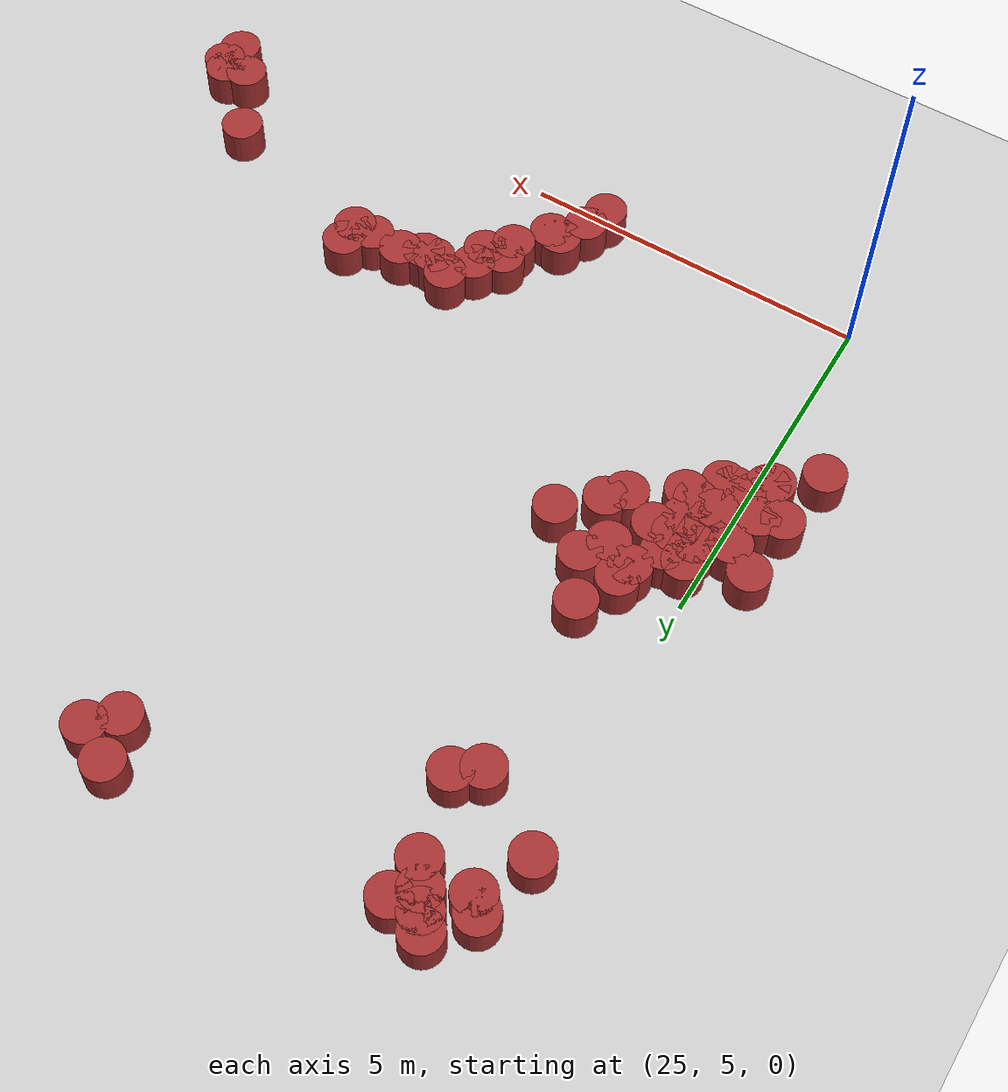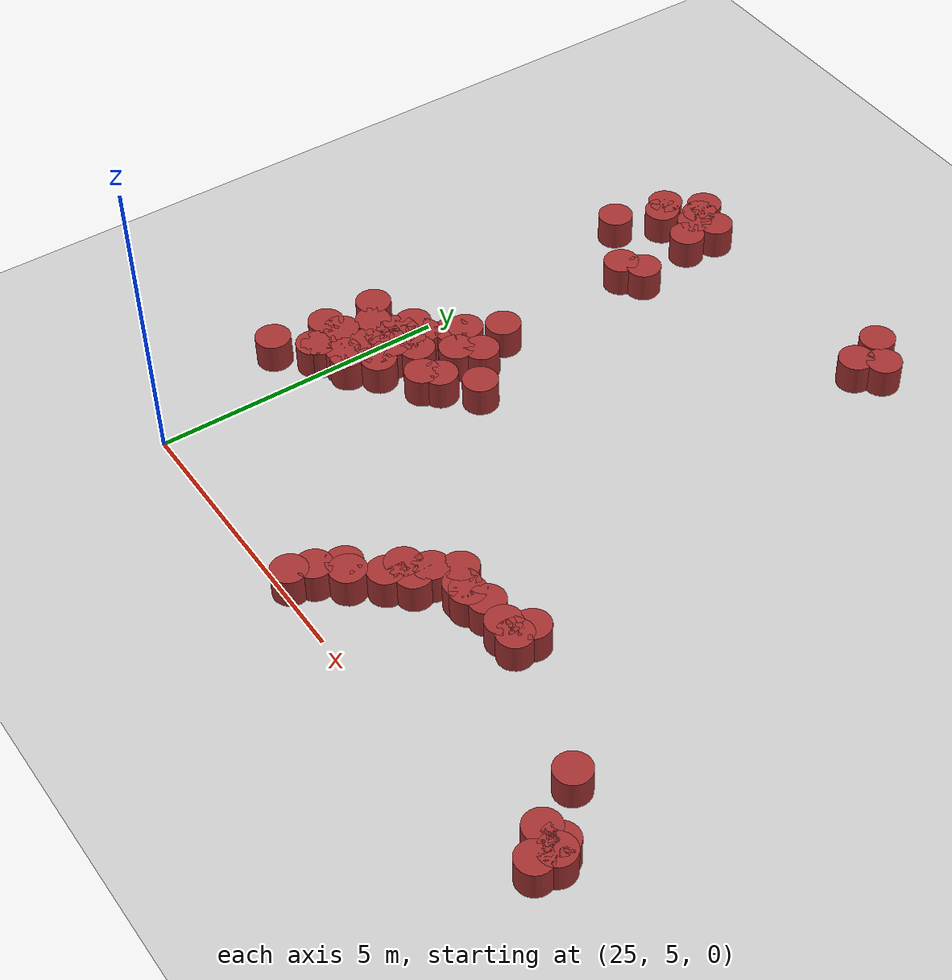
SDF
<sdf version="1.6">
 <world name="default">
  <model name="ground_plane">
   <static>1</static>
   <link name="link">
    <collision name="collision">
     <geometry><plane><normal>0 0 1</normal><size>100 100</size></plane></geometry>
     <surface><friction><ode><mu>100</mu><mu2>50</mu2></ode></friction></surface>
    </collision>
    <visual name="visual">
     <cast_shadows>0</cast_shadows>
     <geometry><plane><normal>0 0 1</normal><size>100 100</size></plane></geometry>
     <material>
      <script><uri>file://media/materials/scripts/gazebo.material</uri><name>Gazebo/Grey</name></script>
     </material>
    </visual>
   </link>
  </model>
  <model name="unit_cylinder_58">
   <static>1</static>
   <pose>26.1581 9.84013 0 0 -0 0</pose>
   <link name="link">
    <inertial>
     <mass>1</mass>
     <inertia><ixx>0.145833</ixx><ixy>0</ixy><ixz>0</ixz><iyy>0.145833</iyy><iyz>0</iyz><izz>0.125</izz></inertia>
    </inertial>
    <collision name="collision">
     <geometry><cylinder><radius>0.3</radius><length>1</length></cylinder></geometry>
    </collision>
    <visual name="visual">
     <geometry><cylinder><radius>0.3</radius><length>1</length></cylinder></geometry>
     <material><ambient>0.648 0.192 0.192 1</ambient><diffuse>0.648 0.192 0.192 1</diffuse></material>
     <material>
      <script><name>Gazebo/Grey</name><uri>file://media/materials/scripts/gazebo.material</uri></script>
     </material>
    </visual>
   </link>
  </model>
  <model name="unit_cylinder_293">
   <static>1</static>
   <pose>24.679 8.51877 0 0 -0 0</pose>
   <link name="link">
    <inertial>
     <mass>1</mass>
     <inertia><ixx>0.145833</ixx><ixy>0</ixy><ixz>0</ixz><iyy>0.145833</iyy><iyz>0</iyz><izz>0.125</izz></inertia>
    </inertial>
    <collision name="collision">
     <geometry><cylinder><radius>0.3</radius><length>1</length></cylinder></geometry>
    </collision>
    <visual name="visual">
     <geometry><cylinder><radius>0.3</radius><length>1</length></cylinder></geometry>
     <material><ambient>0.648 0.192 0.192 1</ambient><diffuse>0.648 0.192 0.192 1</diffuse></material>
     <material>
      <script><name>Gazebo/Grey</name><uri>file://media/materials/scripts/gazebo.material</uri></script>
     </material>
    </visual>
   </link>
  </model>
  <model name="unit_cylinder_294">
   <static>1</static>
   <pose>25.9088 13.3573 0 0 -0 0</pose>
   <link name="link">
    <inertial>
     <mass>1</mass>
     <inertia><ixx>0.145833</ixx><ixy>0</ixy><ixz>0</ixz><iyy>0.145833</iyy><iyz>0</iyz><izz>0.125</izz></inertia>
    </inertial>
    <collision name="collision">
     <geometry><cylinder><radius>0.3</radius><length>1</length></cylinder></geometry>
    </collision>
    <visual name="visual">
     <geometry><cylinder><radius>0.3</radius><length>1</length></cylinder></geometry>
     <material><ambient>0.648 0.192 0.192 1</ambient><diffuse>0.648 0.192 0.192 1</diffuse></material>
     <material>
      <script><name>Gazebo/Grey</name><uri>file://media/materials/scripts/gazebo.material</uri></script>
     </material>
    </visual>
   </link>
  </model>
  <model name="unit_cylinder_301">
   <static>1</static>
   <pose>25.1671 8.26639 0 0 -0 0</pose>
   <link name="link">
    <inertial>
     <mass>1</mass>
     <inertia><ixx>0.145833</ixx><ixy>0</ixy><ixz>0</ixz><iyy>0.145833</iyy><iyz>0</iyz><izz>0.125</izz></inertia>
    </inertial>
    <collision name="collision">
     <geometry><cylinder><radius>0.3</radius><length>1</length></cylinder></geometry>
    </collision>
    <visual name="visual">
     <geometry><cylinder><radius>0.3</radius><length>1</length></cylinder></geometry>
     <material><ambient>0.648 0.192 0.192 1</ambient><diffuse>0.648 0.192 0.192 1</diffuse></material>
     <material>
      <script><name>Gazebo/Grey</name><uri>file://media/materials/scripts/gazebo.material</uri></script>
     </material>
    </visual>
   </link>
  </model>
  <model name="unit_cylinder_302">
   <static>1</static>
   <pose>24.7943 8.01835 0 0 -0 0</pose>
   <link name="link">
    <inertial>
     <mass>1</mass>
     <inertia><ixx>0.145833</ixx><ixy>0</ixy><ixz>0</ixz><iyy>0.145833</iyy><iyz>0</iyz><izz>0.125</izz></inertia>
    </inertial>
    <collision name="collision">
     <geometry><cylinder><radius>0.3</radius><length>1</length></cylinder></geometry>
    </collision>
    <visual name="visual">
     <geometry><cylinder><radius>0.3</radius><length>1</length></cylinder></geometry>
     <material><ambient>0.648 0.192 0.192 1</ambient><diffuse>0.648 0.192 0.192 1</diffuse></material>
     <material>
      <script><name>Gazebo/Grey</name><uri>file://media/materials/scripts/gazebo.material</uri></script>
     </material>
    </visual>
   </link>
  </model>
  <model name="unit_cylinder_303">
   <static>1</static>
   <pose>24.7979 9.06203 0 0 -0 0</pose>
   <link name="link">
    <inertial>
     <mass>1</mass>
     <inertia><ixx>0.145833</ixx><ixy>0</ixy><ixz>0</ixz><iyy>0.145833</iyy><iyz>0</iyz><izz>0.125</izz></inertia>
    </inertial>
    <collision name="collision">
     <geometry><cylinder><radius>0.3</radius><length>1</length></cylinder></geometry>
    </collision>
    <visual name="visual">
     <geometry><cylinder><radius>0.3</radius><length>1</length></cylinder></geometry>
     <material><ambient>0.648 0.192 0.192 1</ambient><diffuse>0.648 0.192 0.192 1</diffuse></material>
     <material>
      <script><name>Gazebo/Grey</name><uri>file://media/materials/scripts/gazebo.material</uri></script>
     </material>
    </visual>
   </link>
  </model>
  <model name="unit_cylinder_306">
   <static>1</static>
   <pose>26.2382 13.5953 0 0 -0 0</pose>
   <link name="link">
    <inertial>
     <mass>1</mass>
     <inertia><ixx>0.145833</ixx><ixy>0</ixy><ixz>0</ixz><iyy>0.145833</iyy><iyz>0</iyz><izz>0.125</izz></inertia>
    </inertial>
    <collision name="collision">
     <geometry><cylinder><radius>0.3</radius><length>1</length></cylinder></geometry>
    </collision>
    <visual name="visual">
     <geometry><cylinder><radius>0.3</radius><length>1</length></cylinder></geometry>
     <material><ambient>0.648 0.192 0.192 1</ambient><diffuse>0.648 0.192 0.192 1</diffuse></material>
     <material>
      <script><name>Gazebo/Grey</name><uri>file://media/materials/scripts/gazebo.material</uri></script>
     </material>
    </visual>
   </link>
  </model>
  <model name="unit_cylinder_313">
   <static>1</static>
   <pose>25.2 8.7 0 0 -0 0</pose>
   <link name="link">
    <inertial>
     <mass>1</mass>
     <inertia><ixx>0.145833</ixx><ixy>0</ixy><ixz>0</ixz><iyy>0.145833</iyy><iyz>0</iyz><izz>0.125</izz></inertia>
    </inertial>
    <collision name="collision">
     <geometry><cylinder><radius>0.3</radius><length>1</length></cylinder></geometry>
    </collision>
    <visual name="visual">
     <geometry><cylinder><radius>0.3</radius><length>1</length></cylinder></geometry>
     <material><ambient>0.648 0.192 0.192 1</ambient><diffuse>0.648 0.192 0.192 1</diffuse></material>
     <material>
      <script><name>Gazebo/Grey</name><uri>file://media/materials/scripts/gazebo.material</uri></script>
     </material>
    </visual>
   </link>
  </model>
  <model name="unit_cylinder_314">
   <static>1</static>
   <pose>25.2 9 0 0 -0 0</pose>
   <link name="link">
    <inertial>
     <mass>1</mass>
     <inertia><ixx>0.145833</ixx><ixy>0</ixy><ixz>0</ixz><iyy>0.145833</iyy><iyz>0</iyz><izz>0.125</izz></inertia>
    </inertial>
    <collision name="collision">
     <geometry><cylinder><radius>0.3</radius><length>1</length></cylinder></geometry>
    </collision>
    <visual name="visual">
     <geometry><cylinder><radius>0.3</radius><length>1</length></cylinder></geometry>
     <material><ambient>0.648 0.192 0.192 1</ambient><diffuse>0.648 0.192 0.192 1</diffuse></material>
     <material>
      <script><name>Gazebo/Grey</name><uri>file://media/materials/scripts/gazebo.material</uri></script>
     </material>
    </visual>
   </link>
  </model>
  <model name="unit_cylinder_315">
   <static>1</static>
   <pose>25.2 9.3 0 0 -0 0</pose>
   <link name="link">
    <inertial>
     <mass>1</mass>
     <inertia><ixx>0.145833</ixx><ixy>0</ixy><ixz>0</ixz><iyy>0.145833</iyy><iyz>0</iyz><izz>0.125</izz></inertia>
    </inertial>
    <collision name="collision">
     <geometry><cylinder><radius>0.3</radius><length>1</length></cylinder></geometry>
    </collision>
    <visual name="visual">
     <geometry><cylinder><radius>0.3</radius><length>1</length></cylinder></geometry>
     <material><ambient>0.648 0.192 0.192 1</ambient><diffuse>0.648 0.192 0.192 1</diffuse></material>
     <material>
      <script><name>Gazebo/Grey</name><uri>file://media/materials/scripts/gazebo.material</uri></script>
     </material>
    </visual>
   </link>
  </model>
  <model name="unit_cylinder_316">
   <static>1</static>
   <pose>25.2 9.6 0 0 -0 0</pose>
   <link name="link">
    <inertial>
     <mass>1</mass>
     <inertia><ixx>0.145833</ixx><ixy>0</ixy><ixz>0</ixz><iyy>0.145833</iyy><iyz>0</iyz><izz>0.125</izz></inertia>
    </inertial>
    <collision name="collision">
     <geometry><cylinder><radius>0.3</radius><length>1</length></cylinder></geometry>
    </collision>
    <visual name="visual">
     <geometry><cylinder><radius>0.3</radius><length>1</length></cylinder></geometry>
     <material><ambient>0.648 0.192 0.192 1</ambient><diffuse>0.648 0.192 0.192 1</diffuse></material>
     <material>
      <script><name>Gazebo/Grey</name><uri>file://media/materials/scripts/gazebo.material</uri></script>
     </material>
    </visual>
   </link>
  </model>
  <model name="unit_cylinder_319">
   <static>1</static>
   <pose>24.3799 8.39844 0 0 -0 0</pose>
   <link name="link">
    <inertial>
     <mass>1</mass>
     <inertia><ixx>0.145833</ixx><ixy>0</ixy><ixz>0</ixz><iyy>0.145833</iyy><iyz>0</iyz><izz>0.125</izz></inertia>
    </inertial>
    <collision name="collision">
     <geometry><cylinder><radius>0.3</radius><length>1</length></cylinder></geometry>
    </collision>
    <visual name="visual">
     <geometry><cylinder><radius>0.3</radius><length>1</length></cylinder></geometry>
     <material><ambient>0.648 0.192 0.192 1</ambient><diffuse>0.648 0.192 0.192 1</diffuse></material>
     <material>
      <script><name>Gazebo/Grey</name><uri>file://media/materials/scripts/gazebo.material</uri></script>
     </material>
    </visual>
   </link>
  </model>
  <model name="unit_cylinder_324">
   <static>1</static>
   <pose>25.5 8.7 0 0 -0 0</pose>
   <link name="link">
    <inertial>
     <mass>1</mass>
     <inertia><ixx>0.145833</ixx><ixy>0</ixy><ixz>0</ixz><iyy>0.145833</iyy><iyz>0</iyz><izz>0.125</izz></inertia>
    </inertial>
    <collision name="collision">
     <geometry><cylinder><radius>0.3</radius><length>1</length></cylinder></geometry>
    </collision>
    <visual name="visual">
     <geometry><cylinder><radius>0.3</radius><length>1</length></cylinder></geometry>
     <material><ambient>0.648 0.192 0.192 1</ambient><diffuse>0.648 0.192 0.192 1</diffuse></material>
     <material>
      <script><name>Gazebo/Grey</name><uri>file://media/materials/scripts/gazebo.material</uri></script>
     </material>
    </visual>
   </link>
  </model>
  <model name="unit_cylinder_325">
   <static>1</static>
   <pose>25.5 9 0 0 -0 0</pose>
   <link name="link">
    <inertial>
     <mass>1</mass>
     <inertia><ixx>0.145833</ixx><ixy>0</ixy><ixz>0</ixz><iyy>0.145833</iyy><iyz>0</iyz><izz>0.125</izz></inertia>
    </inertial>
    <collision name="collision">
     <geometry><cylinder><radius>0.3</radius><length>1</length></cylinder></geometry>
    </collision>
    <visual name="visual">
     <geometry><cylinder><radius>0.3</radius><length>1</length></cylinder></geometry>
     <material><ambient>0.648 0.192 0.192 1</ambient><diffuse>0.648 0.192 0.192 1</diffuse></material>
     <material>
      <script><name>Gazebo/Grey</name><uri>file://media/materials/scripts/gazebo.material</uri></script>
     </material>
    </visual>
   </link>
  </model>
  <model name="unit_cylinder_326">
   <static>1</static>
   <pose>25.5 9.3 0 0 -0 0</pose>
   <link name="link">
    <inertial>
     <mass>1</mass>
     <inertia><ixx>0.145833</ixx><ixy>0</ixy><ixz>0</ixz><iyy>0.145833</iyy><iyz>0</iyz><izz>0.125</izz></inertia>
    </inertial>
    <collision name="collision">
     <geometry><cylinder><radius>0.3</radius><length>1</length></cylinder></geometry>
    </collision>
    <visual name="visual">
     <geometry><cylinder><radius>0.3</radius><length>1</length></cylinder></geometry>
     <material><ambient>0.648 0.192 0.192 1</ambient><diffuse>0.648 0.192 0.192 1</diffuse></material>
     <material>
      <script><name>Gazebo/Grey</name><uri>file://media/materials/scripts/gazebo.material</uri></script>
     </material>
    </visual>
   </link>
  </model>
  <model name="unit_cylinder_327">
   <static>1</static>
   <pose>25.5 9.6 0 0 -0 0</pose>
   <link name="link">
    <inertial>
     <mass>1</mass>
     <inertia><ixx>0.145833</ixx><ixy>0</ixy><ixz>0</ixz><iyy>0.145833</iyy><iyz>0</iyz><izz>0.125</izz></inertia>
    </inertial>
    <collision name="collision">
     <geometry><cylinder><radius>0.3</radius><length>1</length></cylinder></geometry>
    </collision>
    <visual name="visual">
     <geometry><cylinder><radius>0.3</radius><length>1</length></cylinder></geometry>
     <material><ambient>0.648 0.192 0.192 1</ambient><diffuse>0.648 0.192 0.192 1</diffuse></material>
     <material>
      <script><name>Gazebo/Grey</name><uri>file://media/materials/scripts/gazebo.material</uri></script>
     </material>
    </visual>
   </link>
  </model>
  <model name="unit_cylinder_328">
   <static>1</static>
   <pose>24.2284 7.47729 0 0 -0 0</pose>
   <link name="link">
    <inertial>
     <mass>1</mass>
     <inertia><ixx>0.145833</ixx><ixy>0</ixy><ixz>0</ixz><iyy>0.145833</iyy><iyz>0</iyz><izz>0.125</izz></inertia>
    </inertial>
    <collision name="collision">
     <geometry><cylinder><radius>0.3</radius><length>1</length></cylinder></geometry>
    </collision>
    <visual name="visual">
     <geometry><cylinder><radius>0.3</radius><length>1</length></cylinder></geometry>
     <material><ambient>0.648 0.192 0.192 1</ambient><diffuse>0.648 0.192 0.192 1</diffuse></material>
     <material>
      <script><name>Gazebo/Grey</name><uri>file://media/materials/scripts/gazebo.material</uri></script>
     </material>
    </visual>
   </link>
  </model>
  <model name="unit_cylinder_330">
   <static>1</static>
   <pose>25.314 8.25682 0 0 -0 0</pose>
   <link name="link">
    <inertial>
     <mass>1</mass>
     <inertia><ixx>0.145833</ixx><ixy>0</ixy><ixz>0</ixz><iyy>0.145833</iyy><iyz>0</iyz><izz>0.125</izz></inertia>
    </inertial>
    <collision name="collision">
     <geometry><cylinder><radius>0.3</radius><length>1</length></cylinder></geometry>
    </collision>
    <visual name="visual">
     <geometry><cylinder><radius>0.3</radius><length>1</length></cylinder></geometry>
     <material><ambient>0.648 0.192 0.192 1</ambient><diffuse>0.648 0.192 0.192 1</diffuse></material>
     <material>
      <script><name>Gazebo/Grey</name><uri>file://media/materials/scripts/gazebo.material</uri></script>
     </material>
    </visual>
   </link>
  </model>
  <model name="unit_cylinder_333">
   <static>1</static>
   <pose>25.8 9.3 0 0 -0 0</pose>
   <link name="link">
    <inertial>
     <mass>1</mass>
     <inertia><ixx>0.145833</ixx><ixy>0</ixy><ixz>0</ixz><iyy>0.145833</iyy><iyz>0</iyz><izz>0.125</izz></inertia>
    </inertial>
    <collision name="collision">
     <geometry><cylinder><radius>0.3</radius><length>1</length></cylinder></geometry>
    </collision>
    <visual name="visual">
     <geometry><cylinder><radius>0.3</radius><length>1</length></cylinder></geometry>
     <material><ambient>0.648 0.192 0.192 1</ambient><diffuse>0.648 0.192 0.192 1</diffuse></material>
     <material>
      <script><name>Gazebo/Grey</name><uri>file://media/materials/scripts/gazebo.material</uri></script>
     </material>
    </visual>
   </link>
  </model>
  <model name="unit_cylinder_334">
   <static>1</static>
   <pose>27.0314 9.73158 0 0 -0 0</pose>
   <link name="link">
    <inertial>
     <mass>1</mass>
     <inertia><ixx>0.145833</ixx><ixy>0</ixy><ixz>0</ixz><iyy>0.145833</iyy><iyz>0</iyz><izz>0.125</izz></inertia>
    </inertial>
    <collision name="collision">
     <geometry><cylinder><radius>0.3</radius><length>1</length></cylinder></geometry>
    </collision>
    <visual name="visual">
     <geometry><cylinder><radius>0.3</radius><length>1</length></cylinder></geometry>
     <material><ambient>0.648 0.192 0.192 1</ambient><diffuse>0.648 0.192 0.192 1</diffuse></material>
     <material>
      <script><name>Gazebo/Grey</name><uri>file://media/materials/scripts/gazebo.material</uri></script>
     </material>
    </visual>
   </link>
  </model>
  <model name="unit_cylinder_335">
   <static>1</static>
   <pose>24.7397 7.9541 0 0 -0 0</pose>
   <link name="link">
    <inertial>
     <mass>1</mass>
     <inertia><ixx>0.145833</ixx><ixy>0</ixy><ixz>0</ixz><iyy>0.145833</iyy><iyz>0</iyz><izz>0.125</izz></inertia>
    </inertial>
    <collision name="collision">
     <geometry><cylinder><radius>0.3</radius><length>1</length></cylinder></geometry>
    </collision>
    <visual name="visual">
     <geometry><cylinder><radius>0.3</radius><length>1</length></cylinder></geometry>
     <material><ambient>0.648 0.192 0.192 1</ambient><diffuse>0.648 0.192 0.192 1</diffuse></material>
     <material>
      <script><name>Gazebo/Grey</name><uri>file://media/materials/scripts/gazebo.material</uri></script>
     </material>
    </visual>
   </link>
  </model>
  <model name="unit_cylinder_338">
   <static>1</static>
   <pose>29.8973 15.6858 0 0 -0 0</pose>
   <link name="link">
    <inertial>
     <mass>1</mass>
     <inertia><ixx>0.145833</ixx><ixy>0</ixy><ixz>0</ixz><iyy>0.145833</iyy><iyz>0</iyz><izz>0.125</izz></inertia>
    </inertial>
    <collision name="collision">
     <geometry><cylinder><radius>0.3</radius><length>1</length></cylinder></geometry>
    </collision>
    <visual name="visual">
     <geometry><cylinder><radius>0.3</radius><length>1</length></cylinder></geometry>
     <material><ambient>0.648 0.192 0.192 1</ambient><diffuse>0.648 0.192 0.192 1</diffuse></material>
     <material>
      <script><name>Gazebo/Grey</name><uri>file://media/materials/scripts/gazebo.material</uri></script>
     </material>
    </visual>
   </link>
  </model>
  <model name="unit_cylinder_339">
   <static>1</static>
   <pose>26.1 10.8 0 0 -0 0</pose>
   <link name="link">
    <inertial>
     <mass>1</mass>
     <inertia><ixx>0.145833</ixx><ixy>0</ixy><ixz>0</ixz><iyy>0.145833</iyy><iyz>0</iyz><izz>0.125</izz></inertia>
    </inertial>
    <collision name="collision">
     <geometry><cylinder><radius>0.3</radius><length>1</length></cylinder></geometry>
    </collision>
    <visual name="visual">
     <geometry><cylinder><radius>0.3</radius><length>1</length></cylinder></geometry>
     <material><ambient>0.648 0.192 0.192 1</ambient><diffuse>0.648 0.192 0.192 1</diffuse></material>
     <material>
      <script><name>Gazebo/Grey</name><uri>file://media/materials/scripts/gazebo.material</uri></script>
     </material>
    </visual>
   </link>
  </model>
  <model name="unit_cylinder_340">
   <static>1</static>
   <pose>25.8152 10.234 0 0 -0 0</pose>
   <link name="link">
    <inertial>
     <mass>1</mass>
     <inertia><ixx>0.145833</ixx><ixy>0</ixy><ixz>0</ixz><iyy>0.145833</iyy><iyz>0</iyz><izz>0.125</izz></inertia>
    </inertial>
    <collision name="collision">
     <geometry><cylinder><radius>0.3</radius><length>1</length></cylinder></geometry>
    </collision>
    <visual name="visual">
     <geometry><cylinder><radius>0.3</radius><length>1</length></cylinder></geometry>
     <material><ambient>0.648 0.192 0.192 1</ambient><diffuse>0.648 0.192 0.192 1</diffuse></material>
     <material>
      <script><name>Gazebo/Grey</name><uri>file://media/materials/scripts/gazebo.material</uri></script>
     </material>
    </visual>
   </link>
  </model>
  <model name="unit_cylinder_343">
   <static>1</static>
   <pose>30.0771 15.0841 0 0 -0 0</pose>
   <link name="link">
    <inertial>
     <mass>1</mass>
     <inertia><ixx>0.145833</ixx><ixy>0</ixy><ixz>0</ixz><iyy>0.145833</iyy><iyz>0</iyz><izz>0.125</izz></inertia>
    </inertial>
    <collision name="collision">
     <geometry><cylinder><radius>0.3</radius><length>1</length></cylinder></geometry>
    </collision>
    <visual name="visual">
     <geometry><cylinder><radius>0.3</radius><length>1</length></cylinder></geometry>
     <material><ambient>0.648 0.192 0.192 1</ambient><diffuse>0.648 0.192 0.192 1</diffuse></material>
     <material>
      <script><name>Gazebo/Grey</name><uri>file://media/materials/scripts/gazebo.material</uri></script>
     </material>
    </visual>
   </link>
  </model>
  <model name="unit_cylinder_348">
   <static>1</static>
   <pose>25.7549 10.0047 0 0 -0 0</pose>
   <link name="link">
    <inertial>
     <mass>1</mass>
     <inertia><ixx>0.145833</ixx><ixy>0</ixy><ixz>0</ixz><iyy>0.145833</iyy><iyz>0</iyz><izz>0.125</izz></inertia>
    </inertial>
    <collision name="collision">
     <geometry><cylinder><radius>0.3</radius><length>1</length></cylinder></geometry>
    </collision>
    <visual name="visual">
     <geometry><cylinder><radius>0.3</radius><length>1</length></cylinder></geometry>
     <material><ambient>0.648 0.192 0.192 1</ambient><diffuse>0.648 0.192 0.192 1</diffuse></material>
     <material>
      <script><name>Gazebo/Grey</name><uri>file://media/materials/scripts/gazebo.material</uri></script>
     </material>
    </visual>
   </link>
  </model>
  <model name="unit_cylinder_349">
   <static>1</static>
   <pose>26.4058 10.1662 0 0 -0 0</pose>
   <link name="link">
    <inertial>
     <mass>1</mass>
     <inertia><ixx>0.145833</ixx><ixy>0</ixy><ixz>0</ixz><iyy>0.145833</iyy><iyz>0</iyz><izz>0.125</izz></inertia>
    </inertial>
    <collision name="collision">
     <geometry><cylinder><radius>0.3</radius><length>1</length></cylinder></geometry>
    </collision>
    <visual name="visual">
     <geometry><cylinder><radius>0.3</radius><length>1</length></cylinder></geometry>
     <material><ambient>0.648 0.192 0.192 1</ambient><diffuse>0.648 0.192 0.192 1</diffuse></material>
     <material>
      <script><name>Gazebo/Grey</name><uri>file://media/materials/scripts/gazebo.material</uri></script>
     </material>
    </visual>
   </link>
  </model>
  <model name="unit_cylinder_354">
   <static>1</static>
   <pose>25.7505 15.0516 0 0 -0 0</pose>
   <link name="link">
    <inertial>
     <mass>1</mass>
     <inertia><ixx>0.145833</ixx><ixy>0</ixy><ixz>0</ixz><iyy>0.145833</iyy><iyz>0</iyz><izz>0.125</izz></inertia>
    </inertial>
    <collision name="collision">
     <geometry><cylinder><radius>0.3</radius><length>1</length></cylinder></geometry>
    </collision>
    <visual name="visual">
     <geometry><cylinder><radius>0.3</radius><length>1</length></cylinder></geometry>
     <material><ambient>0.648 0.192 0.192 1</ambient><diffuse>0.648 0.192 0.192 1</diffuse></material>
     <material>
      <script><name>Gazebo/Grey</name><uri>file://media/materials/scripts/gazebo.material</uri></script>
     </material>
    </visual>
   </link>
  </model>
  <model name="unit_cylinder_355">
   <static>1</static>
   <pose>25.6052 15.2789 0 0 -0 0</pose>
   <link name="link">
    <inertial>
     <mass>1</mass>
     <inertia><ixx>0.145833</ixx><ixy>0</ixy><ixz>0</ixz><iyy>0.145833</iyy><iyz>0</iyz><izz>0.125</izz></inertia>
    </inertial>
    <collision name="collision">
     <geometry><cylinder><radius>0.3</radius><length>1</length></cylinder></geometry>
    </collision>
    <visual name="visual">
     <geometry><cylinder><radius>0.3</radius><length>1</length></cylinder></geometry>
     <material><ambient>0.648 0.192 0.192 1</ambient><diffuse>0.648 0.192 0.192 1</diffuse></material>
     <material>
      <script><name>Gazebo/Grey</name><uri>file://media/materials/scripts/gazebo.material</uri></script>
     </material>
    </visual>
   </link>
  </model>
  <model name="unit_cylinder_359">
   <static>1</static>
   <pose>25.4731 15.4797 0 0 -0 0</pose>
   <link name="link">
    <inertial>
     <mass>1</mass>
     <inertia><ixx>0.145833</ixx><ixy>0</ixy><ixz>0</ixz><iyy>0.145833</iyy><iyz>0</iyz><izz>0.125</izz></inertia>
    </inertial>
    <collision name="collision">
     <geometry><cylinder><radius>0.3</radius><length>1</length></cylinder></geometry>
    </collision>
    <visual name="visual">
     <geometry><cylinder><radius>0.3</radius><length>1</length></cylinder></geometry>
     <material><ambient>0.648 0.192 0.192 1</ambient><diffuse>0.648 0.192 0.192 1</diffuse></material>
     <material>
      <script><name>Gazebo/Grey</name><uri>file://media/materials/scripts/gazebo.material</uri></script>
     </material>
    </visual>
   </link>
  </model>
  <model name="unit_cylinder_360">
   <static>1</static>
   <pose>25.1883 14.7694 0 0 -0 0</pose>
   <link name="link">
    <inertial>
     <mass>1</mass>
     <inertia><ixx>0.145833</ixx><ixy>0</ixy><ixz>0</ixz><iyy>0.145833</iyy><iyz>0</iyz><izz>0.125</izz></inertia>
    </inertial>
    <collision name="collision">
     <geometry><cylinder><radius>0.3</radius><length>1</length></cylinder></geometry>
    </collision>
    <visual name="visual">
     <geometry><cylinder><radius>0.3</radius><length>1</length></cylinder></geometry>
     <material><ambient>0.648 0.192 0.192 1</ambient><diffuse>0.648 0.192 0.192 1</diffuse></material>
     <material>
      <script><name>Gazebo/Grey</name><uri>file://media/materials/scripts/gazebo.material</uri></script>
     </material>
    </visual>
   </link>
  </model>
  <model name="unit_cylinder_362">
   <static>1</static>
   <pose>26.5306 9.28115 0 0 -0 0</pose>
   <link name="link">
    <inertial>
     <mass>1</mass>
     <inertia><ixx>0.145833</ixx><ixy>0</ixy><ixz>0</ixz><iyy>0.145833</iyy><iyz>0</iyz><izz>0.125</izz></inertia>
    </inertial>
    <collision name="collision">
     <geometry><cylinder><radius>0.3</radius><length>1</length></cylinder></geometry>
    </collision>
    <visual name="visual">
     <geometry><cylinder><radius>0.3</radius><length>1</length></cylinder></geometry>
     <material><ambient>0.648 0.192 0.192 1</ambient><diffuse>0.648 0.192 0.192 1</diffuse></material>
     <material>
      <script><name>Gazebo/Grey</name><uri>file://media/materials/scripts/gazebo.material</uri></script>
     </material>
    </visual>
   </link>
  </model>
  <model name="unit_cylinder_363">
   <static>1</static>
   <pose>25.6724 8.64059 0 0 -0 0</pose>
   <link name="link">
    <inertial>
     <mass>1</mass>
     <inertia><ixx>0.145833</ixx><ixy>0</ixy><ixz>0</ixz><iyy>0.145833</iyy><iyz>0</iyz><izz>0.125</izz></inertia>
    </inertial>
    <collision name="collision">
     <geometry><cylinder><radius>0.3</radius><length>1</length></cylinder></geometry>
    </collision>
    <visual name="visual">
     <geometry><cylinder><radius>0.3</radius><length>1</length></cylinder></geometry>
     <material><ambient>0.648 0.192 0.192 1</ambient><diffuse>0.648 0.192 0.192 1</diffuse></material>
     <material>
      <script><name>Gazebo/Grey</name><uri>file://media/materials/scripts/gazebo.material</uri></script>
     </material>
    </visual>
   </link>
  </model>
  <model name="unit_cylinder_364">
   <static>1</static>
   <pose>26.3288 9.06127 0 0 -0 0</pose>
   <link name="link">
    <inertial>
     <mass>1</mass>
     <inertia><ixx>0.145833</ixx><ixy>0</ixy><ixz>0</ixz><iyy>0.145833</iyy><iyz>0</iyz><izz>0.125</izz></inertia>
    </inertial>
    <collision name="collision">
     <geometry><cylinder><radius>0.3</radius><length>1</length></cylinder></geometry>
    </collision>
    <visual name="visual">
     <geometry><cylinder><radius>0.3</radius><length>1</length></cylinder></geometry>
     <material><ambient>0.648 0.192 0.192 1</ambient><diffuse>0.648 0.192 0.192 1</diffuse></material>
     <material>
      <script><name>Gazebo/Grey</name><uri>file://media/materials/scripts/gazebo.material</uri></script>
     </material>
    </visual>
   </link>
  </model>
  <model name="unit_cylinder_365">
   <static>1</static>
   <pose>26.0225 15.31 0 0 -0 0</pose>
   <link name="link">
    <inertial>
     <mass>1</mass>
     <inertia><ixx>0.145833</ixx><ixy>0</ixy><ixz>0</ixz><iyy>0.145833</iyy><iyz>0</iyz><izz>0.125</izz></inertia>
    </inertial>
    <collision name="collision">
     <geometry><cylinder><radius>0.3</radius><length>1</length></cylinder></geometry>
    </collision>
    <visual name="visual">
     <geometry><cylinder><radius>0.3</radius><length>1</length></cylinder></geometry>
     <material><ambient>0.648 0.192 0.192 1</ambient><diffuse>0.648 0.192 0.192 1</diffuse></material>
     <material>
      <script><name>Gazebo/Grey</name><uri>file://media/materials/scripts/gazebo.material</uri></script>
     </material>
    </visual>
   </link>
  </model>
  <model name="unit_cylinder_368">
   <static>1</static>
   <pose>25.966 14.7307 0 0 -0 0</pose>
   <link name="link">
    <inertial>
     <mass>1</mass>
     <inertia><ixx>0.145833</ixx><ixy>0</ixy><ixz>0</ixz><iyy>0.145833</iyy><iyz>0</iyz><izz>0.125</izz></inertia>
    </inertial>
    <collision name="collision">
     <geometry><cylinder><radius>0.3</radius><length>1</length></cylinder></geometry>
    </collision>
    <visual name="visual">
     <geometry><cylinder><radius>0.3</radius><length>1</length></cylinder></geometry>
     <material><ambient>0.648 0.192 0.192 1</ambient><diffuse>0.648 0.192 0.192 1</diffuse></material>
     <material>
      <script><name>Gazebo/Grey</name><uri>file://media/materials/scripts/gazebo.material</uri></script>
     </material>
    </visual>
   </link>
  </model>
  <model name="unit_cylinder_369">
   <static>1</static>
   <pose>25.0322 14.9533 0 0 -0 0</pose>
   <link name="link">
    <inertial>
     <mass>1</mass>
     <inertia><ixx>0.145833</ixx><ixy>0</ixy><ixz>0</ixz><iyy>0.145833</iyy><iyz>0</iyz><izz>0.125</izz></inertia>
    </inertial>
    <collision name="collision">
     <geometry><cylinder><radius>0.3</radius><length>1</length></cylinder></geometry>
    </collision>
    <visual name="visual">
     <geometry><cylinder><radius>0.3</radius><length>1</length></cylinder></geometry>
     <material><ambient>0.648 0.192 0.192 1</ambient><diffuse>0.648 0.192 0.192 1</diffuse></material>
     <material>
      <script><name>Gazebo/Grey</name><uri>file://media/materials/scripts/gazebo.material</uri></script>
     </material>
    </visual>
   </link>
  </model>
  <model name="unit_cylinder_372">
   <static>1</static>
   <pose>24.8366 14.0143 0 0 -0 0</pose>
   <link name="link">
    <inertial>
     <mass>1</mass>
     <inertia><ixx>0.145833</ixx><ixy>0</ixy><ixz>0</ixz><iyy>0.145833</iyy><iyz>0</iyz><izz>0.125</izz></inertia>
    </inertial>
    <collision name="collision">
     <geometry><cylinder><radius>0.3</radius><length>1</length></cylinder></geometry>
    </collision>
    <visual name="visual">
     <geometry><cylinder><radius>0.3</radius><length>1</length></cylinder></geometry>
     <material><ambient>0.648 0.192 0.192 1</ambient><diffuse>0.648 0.192 0.192 1</diffuse></material>
     <material>
      <script><name>Gazebo/Grey</name><uri>file://media/materials/scripts/gazebo.material</uri></script>
     </material>
    </visual>
   </link>
  </model>
  <model name="unit_cylinder_376">
   <static>1</static>
   <pose>28.99 5.48056 0 0 -0 0</pose>
   <link name="link">
    <inertial>
     <mass>1</mass>
     <inertia><ixx>0.145833</ixx><ixy>0</ixy><ixz>0</ixz><iyy>0.145833</iyy><iyz>0</iyz><izz>0.125</izz></inertia>
    </inertial>
    <collision name="collision">
     <geometry><cylinder><radius>0.3</radius><length>1</length></cylinder></geometry>
    </collision>
    <visual name="visual">
     <geometry><cylinder><radius>0.3</radius><length>1</length></cylinder></geometry>
     <material><ambient>0.648 0.192 0.192 1</ambient><diffuse>0.648 0.192 0.192 1</diffuse></material>
     <material>
      <script><name>Gazebo/Grey</name><uri>file://media/materials/scripts/gazebo.material</uri></script>
     </material>
    </visual>
   </link>
  </model>
  <model name="unit_cylinder_377">
   <static>1</static>
   <pose>28.8633 5.12715 0 0 -0 0</pose>
   <link name="link">
    <inertial>
     <mass>1</mass>
     <inertia><ixx>0.145833</ixx><ixy>0</ixy><ixz>0</ixz><iyy>0.145833</iyy><iyz>0</iyz><izz>0.125</izz></inertia>
    </inertial>
    <collision name="collision">
     <geometry><cylinder><radius>0.3</radius><length>1</length></cylinder></geometry>
    </collision>
    <visual name="visual">
     <geometry><cylinder><radius>0.3</radius><length>1</length></cylinder></geometry>
     <material><ambient>0.648 0.192 0.192 1</ambient><diffuse>0.648 0.192 0.192 1</diffuse></material>
     <material>
      <script><name>Gazebo/Grey</name><uri>file://media/materials/scripts/gazebo.material</uri></script>
     </material>
    </visual>
   </link>
  </model>
  <model name="unit_cylinder_378">
   <static>1</static>
   <pose>29.1852 5.88621 0 0 -0 0</pose>
   <link name="link">
    <inertial>
     <mass>1</mass>
     <inertia><ixx>0.145833</ixx><ixy>0</ixy><ixz>0</ixz><iyy>0.145833</iyy><iyz>0</iyz><izz>0.125</izz></inertia>
    </inertial>
    <collision name="collision">
     <geometry><cylinder><radius>0.3</radius><length>1</length></cylinder></geometry>
    </collision>
    <visual name="visual">
     <geometry><cylinder><radius>0.3</radius><length>1</length></cylinder></geometry>
     <material><ambient>0.648 0.192 0.192 1</ambient><diffuse>0.648 0.192 0.192 1</diffuse></material>
     <material>
      <script><name>Gazebo/Grey</name><uri>file://media/materials/scripts/gazebo.material</uri></script>
     </material>
    </visual>
   </link>
  </model>
  <model name="unit_cylinder_383">
   <static>1</static>
   <pose>29.3533 5.8474 0 0 -0 0</pose>
   <link name="link">
    <inertial>
     <mass>1</mass>
     <inertia><ixx>0.145833</ixx><ixy>0</ixy><ixz>0</ixz><iyy>0.145833</iyy><iyz>0</iyz><izz>0.125</izz></inertia>
    </inertial>
    <collision name="collision">
     <geometry><cylinder><radius>0.3</radius><length>1</length></cylinder></geometry>
    </collision>
    <visual name="visual">
     <geometry><cylinder><radius>0.3</radius><length>1</length></cylinder></geometry>
     <material><ambient>0.648 0.192 0.192 1</ambient><diffuse>0.648 0.192 0.192 1</diffuse></material>
     <material>
      <script><name>Gazebo/Grey</name><uri>file://media/materials/scripts/gazebo.material</uri></script>
     </material>
    </visual>
   </link>
  </model>
  <model name="unit_cylinder_390">
   <static>1</static>
   <pose>30.3934 15.4071 0 0 -0 0</pose>
   <link name="link">
    <inertial>
     <mass>1</mass>
     <inertia><ixx>0.145833</ixx><ixy>0</ixy><ixz>0</ixz><iyy>0.145833</iyy><iyz>0</iyz><izz>0.125</izz></inertia>
    </inertial>
    <collision name="collision">
     <geometry><cylinder><radius>0.3</radius><length>1</length></cylinder></geometry>
    </collision>
    <visual name="visual">
     <geometry><cylinder><radius>0.3</radius><length>1</length></cylinder></geometry>
     <material><ambient>0.648 0.192 0.192 1</ambient><diffuse>0.648 0.192 0.192 1</diffuse></material>
     <material>
      <script><name>Gazebo/Grey</name><uri>file://media/materials/scripts/gazebo.material</uri></script>
     </material>
    </visual>
   </link>
  </model>
  <model name="unit_cylinder_391">
   <static>1</static>
   <pose>29.7 6.3 0 0 -0 0</pose>
   <link name="link">
    <inertial>
     <mass>1</mass>
     <inertia><ixx>0.145833</ixx><ixy>0</ixy><ixz>0</ixz><iyy>0.145833</iyy><iyz>0</iyz><izz>0.125</izz></inertia>
    </inertial>
    <collision name="collision">
     <geometry><cylinder><radius>0.3</radius><length>1</length></cylinder></geometry>
    </collision>
    <visual name="visual">
     <geometry><cylinder><radius>0.3</radius><length>1</length></cylinder></geometry>
     <material><ambient>0.648 0.192 0.192 1</ambient><diffuse>0.648 0.192 0.192 1</diffuse></material>
     <material>
      <script><name>Gazebo/Grey</name><uri>file://media/materials/scripts/gazebo.material</uri></script>
     </material>
    </visual>
   </link>
  </model>
  <model name="unit_cylinder_392">
   <static>1</static>
   <pose>29.7 6.6 0 0 -0 0</pose>
   <link name="link">
    <inertial>
     <mass>1</mass>
     <inertia><ixx>0.145833</ixx><ixy>0</ixy><ixz>0</ixz><iyy>0.145833</iyy><iyz>0</iyz><izz>0.125</izz></inertia>
    </inertial>
    <collision name="collision">
     <geometry><cylinder><radius>0.3</radius><length>1</length></cylinder></geometry>
    </collision>
    <visual name="visual">
     <geometry><cylinder><radius>0.3</radius><length>1</length></cylinder></geometry>
     <material><ambient>0.648 0.192 0.192 1</ambient><diffuse>0.648 0.192 0.192 1</diffuse></material>
     <material>
      <script><name>Gazebo/Grey</name><uri>file://media/materials/scripts/gazebo.material</uri></script>
     </material>
    </visual>
   </link>
  </model>
  <model name="unit_cylinder_395">
   <static>1</static>
   <pose>30 6.6 0 0 -0 0</pose>
   <link name="link">
    <inertial>
     <mass>1</mass>
     <inertia><ixx>0.145833</ixx><ixy>0</ixy><ixz>0</ixz><iyy>0.145833</iyy><iyz>0</iyz><izz>0.125</izz></inertia>
    </inertial>
    <collision name="collision">
     <geometry><cylinder><radius>0.3</radius><length>1</length></cylinder></geometry>
    </collision>
    <visual name="visual">
     <geometry><cylinder><radius>0.3</radius><length>1</length></cylinder></geometry>
     <material><ambient>0.648 0.192 0.192 1</ambient><diffuse>0.648 0.192 0.192 1</diffuse></material>
     <material>
      <script><name>Gazebo/Grey</name><uri>file://media/materials/scripts/gazebo.material</uri></script>
     </material>
    </visual>
   </link>
  </model>
  <model name="unit_cylinder_396">
   <static>1</static>
   <pose>30 6.9 0 0 -0 0</pose>
   <link name="link">
    <inertial>
     <mass>1</mass>
     <inertia><ixx>0.145833</ixx><ixy>0</ixy><ixz>0</ixz><iyy>0.145833</iyy><iyz>0</iyz><izz>0.125</izz></inertia>
    </inertial>
    <collision name="collision">
     <geometry><cylinder><radius>0.3</radius><length>1</length></cylinder></geometry>
    </collision>
    <visual name="visual">
     <geometry><cylinder><radius>0.3</radius><length>1</length></cylinder></geometry>
     <material><ambient>0.648 0.192 0.192 1</ambient><diffuse>0.648 0.192 0.192 1</diffuse></material>
     <material>
      <script><name>Gazebo/Grey</name><uri>file://media/materials/scripts/gazebo.material</uri></script>
     </material>
    </visual>
   </link>
  </model>
  <model name="unit_cylinder_404">
   <static>1</static>
   <pose>24.4054 9.30758 0 0 -0 0</pose>
   <link name="link">
    <inertial>
     <mass>1</mass>
     <inertia><ixx>0.145833</ixx><ixy>0</ixy><ixz>0</ixz><iyy>0.145833</iyy><iyz>0</iyz><izz>0.125</izz></inertia>
    </inertial>
    <collision name="collision">
     <geometry><cylinder><radius>0.3</radius><length>1</length></cylinder></geometry>
    </collision>
    <visual name="visual">
     <geometry><cylinder><radius>0.3</radius><length>1</length></cylinder></geometry>
     <material><ambient>0.648 0.192 0.192 1</ambient><diffuse>0.648 0.192 0.192 1</diffuse></material>
     <material>
      <script><name>Gazebo/Grey</name><uri>file://media/materials/scripts/gazebo.material</uri></script>
     </material>
    </visual>
   </link>
  </model>
  <model name="unit_cylinder_406">
   <static>1</static>
   <pose>30.5436 7.09323 0 0 -0 0</pose>
   <link name="link">
    <inertial>
     <mass>1</mass>
     <inertia><ixx>0.145833</ixx><ixy>0</ixy><ixz>0</ixz><iyy>0.145833</iyy><iyz>0</iyz><izz>0.125</izz></inertia>
    </inertial>
    <collision name="collision">
     <geometry><cylinder><radius>0.3</radius><length>1</length></cylinder></geometry>
    </collision>
    <visual name="visual">
     <geometry><cylinder><radius>0.3</radius><length>1</length></cylinder></geometry>
     <material><ambient>0.648 0.192 0.192 1</ambient><diffuse>0.648 0.192 0.192 1</diffuse></material>
     <material>
      <script><name>Gazebo/Grey</name><uri>file://media/materials/scripts/gazebo.material</uri></script>
     </material>
    </visual>
   </link>
  </model>
  <model name="unit_cylinder_410">
   <static>1</static>
   <pose>30.7152 7.09236 0 0 -0 0</pose>
   <link name="link">
    <inertial>
     <mass>1</mass>
     <inertia><ixx>0.145833</ixx><ixy>0</ixy><ixz>0</ixz><iyy>0.145833</iyy><iyz>0</iyz><izz>0.125</izz></inertia>
    </inertial>
    <collision name="collision">
     <geometry><cylinder><radius>0.3</radius><length>1</length></cylinder></geometry>
    </collision>
    <visual name="visual">
     <geometry><cylinder><radius>0.3</radius><length>1</length></cylinder></geometry>
     <material><ambient>0.648 0.192 0.192 1</ambient><diffuse>0.648 0.192 0.192 1</diffuse></material>
     <material>
      <script><name>Gazebo/Grey</name><uri>file://media/materials/scripts/gazebo.material</uri></script>
     </material>
    </visual>
   </link>
  </model>
  <model name="unit_cylinder_411">
   <static>1</static>
   <pose>30.2562 7.25867 0 0 -0 0</pose>
   <link name="link">
    <inertial>
     <mass>1</mass>
     <inertia><ixx>0.145833</ixx><ixy>0</ixy><ixz>0</ixz><iyy>0.145833</iyy><iyz>0</iyz><izz>0.125</izz></inertia>
    </inertial>
    <collision name="collision">
     <geometry><cylinder><radius>0.3</radius><length>1</length></cylinder></geometry>
    </collision>
    <visual name="visual">
     <geometry><cylinder><radius>0.3</radius><length>1</length></cylinder></geometry>
     <material><ambient>0.648 0.192 0.192 1</ambient><diffuse>0.648 0.192 0.192 1</diffuse></material>
     <material>
      <script><name>Gazebo/Grey</name><uri>file://media/materials/scripts/gazebo.material</uri></script>
     </material>
    </visual>
   </link>
  </model>
  <model name="unit_cylinder_415">
   <static>1</static>
   <pose>34.2483 6.49948 0 0 -0 0</pose>
   <link name="link">
    <inertial>
     <mass>1</mass>
     <inertia><ixx>0.145833</ixx><ixy>0</ixy><ixz>0</ixz><iyy>0.145833</iyy><iyz>0</iyz><izz>0.125</izz></inertia>
    </inertial>
    <collision name="collision">
     <geometry><cylinder><radius>0.3</radius><length>1</length></cylinder></geometry>
    </collision>
    <visual name="visual">
     <geometry><cylinder><radius>0.3</radius><length>1</length></cylinder></geometry>
     <material><ambient>0.648 0.192 0.192 1</ambient><diffuse>0.648 0.192 0.192 1</diffuse></material>
     <material>
      <script><name>Gazebo/Grey</name><uri>file://media/materials/scripts/gazebo.material</uri></script>
     </material>
    </visual>
   </link>
  </model>
  <model name="unit_cylinder_416">
   <static>1</static>
   <pose>31.025 7.22365 0 0 -0 0</pose>
   <link name="link">
    <inertial>
     <mass>1</mass>
     <inertia><ixx>0.145833</ixx><ixy>0</ixy><ixz>0</ixz><iyy>0.145833</iyy><iyz>0</iyz><izz>0.125</izz></inertia>
    </inertial>
    <collision name="collision">
     <geometry><cylinder><radius>0.3</radius><length>1</length></cylinder></geometry>
    </collision>
    <visual name="visual">
     <geometry><cylinder><radius>0.3</radius><length>1</length></cylinder></geometry>
     <material><ambient>0.648 0.192 0.192 1</ambient><diffuse>0.648 0.192 0.192 1</diffuse></material>
     <material>
      <script><name>Gazebo/Grey</name><uri>file://media/materials/scripts/gazebo.material</uri></script>
     </material>
    </visual>
   </link>
  </model>
  <model name="unit_cylinder_417">
   <static>1</static>
   <pose>31.5 7.2 0 0 -0 0</pose>
   <link name="link">
    <inertial>
     <mass>1</mass>
     <inertia><ixx>0.145833</ixx><ixy>0</ixy><ixz>0</ixz><iyy>0.145833</iyy><iyz>0</iyz><izz>0.125</izz></inertia>
    </inertial>
    <collision name="collision">
     <geometry><cylinder><radius>0.3</radius><length>1</length></cylinder></geometry>
    </collision>
    <visual name="visual">
     <geometry><cylinder><radius>0.3</radius><length>1</length></cylinder></geometry>
     <material><ambient>0.648 0.192 0.192 1</ambient><diffuse>0.648 0.192 0.192 1</diffuse></material>
     <material>
      <script><name>Gazebo/Grey</name><uri>file://media/materials/scripts/gazebo.material</uri></script>
     </material>
    </visual>
   </link>
  </model>
  <model name="unit_cylinder_421">
   <static>1</static>
   <pose>31.8 7.2 0 0 -0 0</pose>
   <link name="link">
    <inertial>
     <mass>1</mass>
     <inertia><ixx>0.145833</ixx><ixy>0</ixy><ixz>0</ixz><iyy>0.145833</iyy><iyz>0</iyz><izz>0.125</izz></inertia>
    </inertial>
    <collision name="collision">
     <geometry><cylinder><radius>0.3</radius><length>1</length></cylinder></geometry>
    </collision>
    <visual name="visual">
     <geometry><cylinder><radius>0.3</radius><length>1</length></cylinder></geometry>
     <material><ambient>0.648 0.192 0.192 1</ambient><diffuse>0.648 0.192 0.192 1</diffuse></material>
     <material>
      <script><name>Gazebo/Grey</name><uri>file://media/materials/scripts/gazebo.material</uri></script>
     </material>
    </visual>
   </link>
  </model>
  <model name="unit_cylinder_422">
   <static>1</static>
   <pose>31.8 7.5 0 0 -0 0</pose>
   <link name="link">
    <inertial>
     <mass>1</mass>
     <inertia><ixx>0.145833</ixx><ixy>0</ixy><ixz>0</ixz><iyy>0.145833</iyy><iyz>0</iyz><izz>0.125</izz></inertia>
    </inertial>
    <collision name="collision">
     <geometry><cylinder><radius>0.3</radius><length>1</length></cylinder></geometry>
    </collision>
    <visual name="visual">
     <geometry><cylinder><radius>0.3</radius><length>1</length></cylinder></geometry>
     <material><ambient>0.648 0.192 0.192 1</ambient><diffuse>0.648 0.192 0.192 1</diffuse></material>
     <material>
      <script><name>Gazebo/Grey</name><uri>file://media/materials/scripts/gazebo.material</uri></script>
     </material>
    </visual>
   </link>
  </model>
  <model name="unit_cylinder_437">
   <static>1</static>
   <pose>35.2167 5.56785 0 0 -0 0</pose>
   <link name="link">
    <inertial>
     <mass>1</mass>
     <inertia><ixx>0.145833</ixx><ixy>0</ixy><ixz>0</ixz><iyy>0.145833</iyy><iyz>0</iyz><izz>0.125</izz></inertia>
    </inertial>
    <collision name="collision">
     <geometry><cylinder><radius>0.3</radius><length>1</length></cylinder></geometry>
    </collision>
    <visual name="visual">
     <geometry><cylinder><radius>0.3</radius><length>1</length></cylinder></geometry>
     <material><ambient>0.648 0.192 0.192 1</ambient><diffuse>0.648 0.192 0.192 1</diffuse></material>
     <material>
      <script><name>Gazebo/Grey</name><uri>file://media/materials/scripts/gazebo.material</uri></script>
     </material>
    </visual>
   </link>
  </model>
  <model name="unit_cylinder_438">
   <static>1</static>
   <pose>34.7889 5.61831 0 0 -0 0</pose>
   <link name="link">
    <inertial>
     <mass>1</mass>
     <inertia><ixx>0.145833</ixx><ixy>0</ixy><ixz>0</ixz><iyy>0.145833</iyy><iyz>0</iyz><izz>0.125</izz></inertia>
    </inertial>
    <collision name="collision">
     <geometry><cylinder><radius>0.3</radius><length>1</length></cylinder></geometry>
    </collision>
    <visual name="visual">
     <geometry><cylinder><radius>0.3</radius><length>1</length></cylinder></geometry>
     <material><ambient>0.648 0.192 0.192 1</ambient><diffuse>0.648 0.192 0.192 1</diffuse></material>
     <material>
      <script><name>Gazebo/Grey</name><uri>file://media/materials/scripts/gazebo.material</uri></script>
     </material>
    </visual>
   </link>
  </model>
  <model name="unit_cylinder_444">
   <static>1</static>
   <pose>35.1522 5.24907 0 0 -0 0</pose>
   <link name="link">
    <inertial>
     <mass>1</mass>
     <inertia><ixx>0.145833</ixx><ixy>0</ixy><ixz>0</ixz><iyy>0.145833</iyy><iyz>0</iyz><izz>0.125</izz></inertia>
    </inertial>
    <collision name="collision">
     <geometry><cylinder><radius>0.3</radius><length>1</length></cylinder></geometry>
    </collision>
    <visual name="visual">
     <geometry><cylinder><radius>0.3</radius><length>1</length></cylinder></geometry>
     <material><ambient>0.648 0.192 0.192 1</ambient><diffuse>0.648 0.192 0.192 1</diffuse></material>
     <material>
      <script><name>Gazebo/Grey</name><uri>file://media/materials/scripts/gazebo.material</uri></script>
     </material>
    </visual>
   </link>
  </model>
  <model name="unit_cylinder_456">
   <static>1</static>
   <pose>35.1 5.7 0 0 -0 0</pose>
   <link name="link">
    <inertial>
     <mass>1</mass>
     <inertia><ixx>0.145833</ixx><ixy>0</ixy><ixz>0</ixz><iyy>0.145833</iyy><iyz>0</iyz><izz>0.125</izz></inertia>
    </inertial>
    <collision name="collision">
     <geometry><cylinder><radius>0.3</radius><length>1</length></cylinder></geometry>
    </collision>
    <visual name="visual">
     <geometry><cylinder><radius>0.3</radius><length>1</length></cylinder></geometry>
     <material><ambient>0.648 0.192 0.192 1</ambient><diffuse>0.648 0.192 0.192 1</diffuse></material>
     <material>
      <script><name>Gazebo/Grey</name><uri>file://media/materials/scripts/gazebo.material</uri></script>
     </material>
    </visual>
   </link>
  </model>
 </world>
</sdf>
